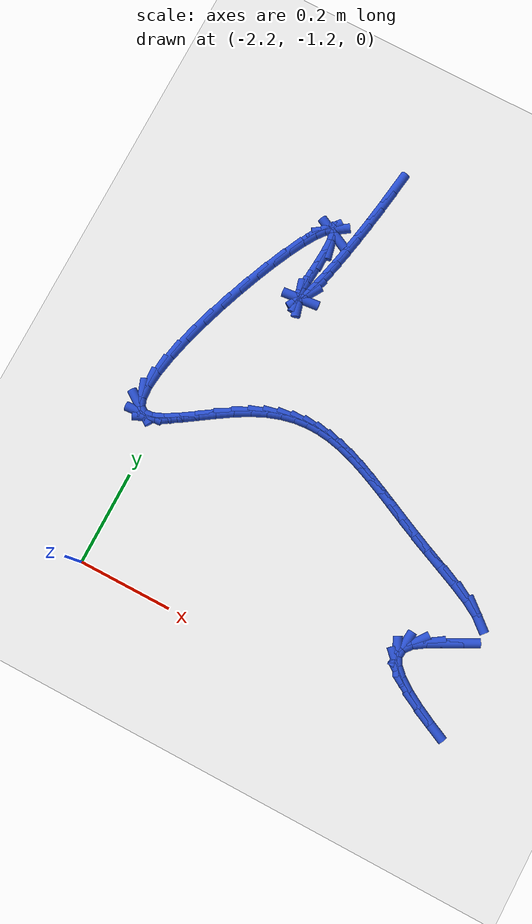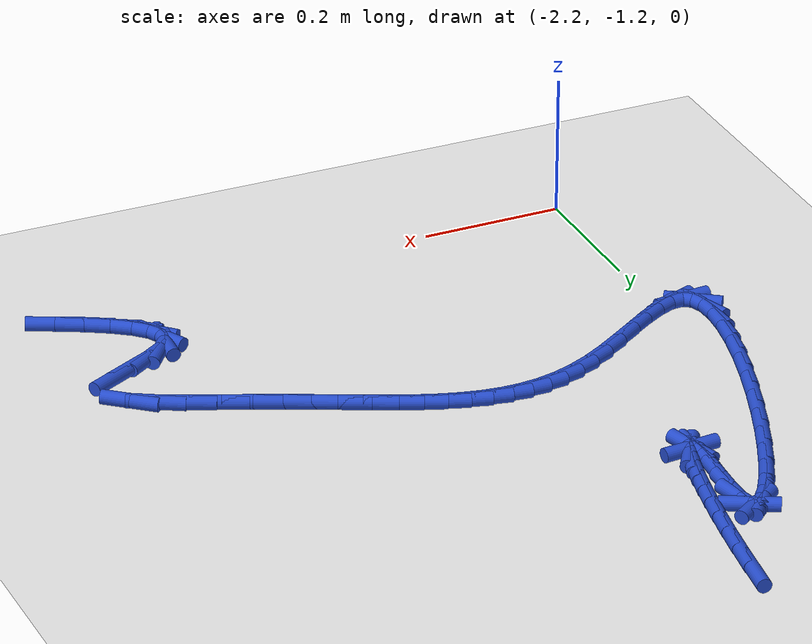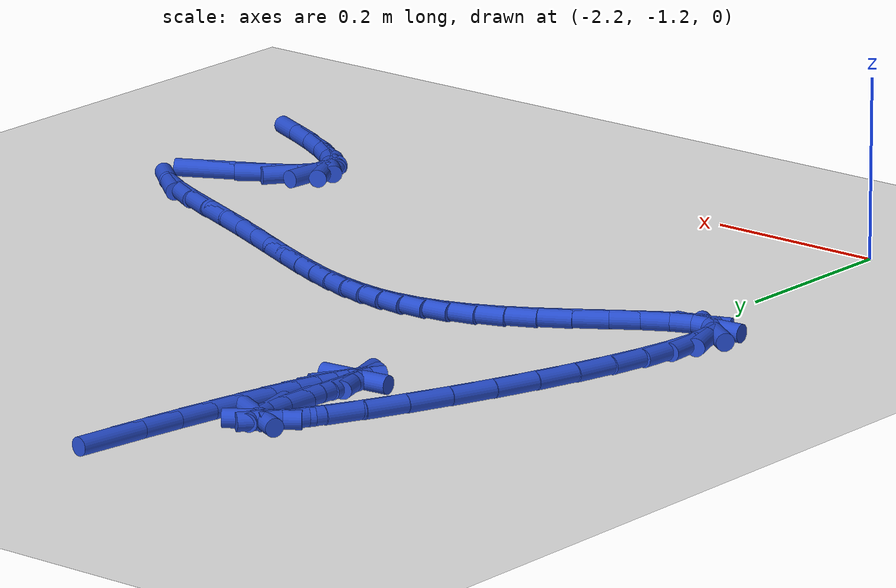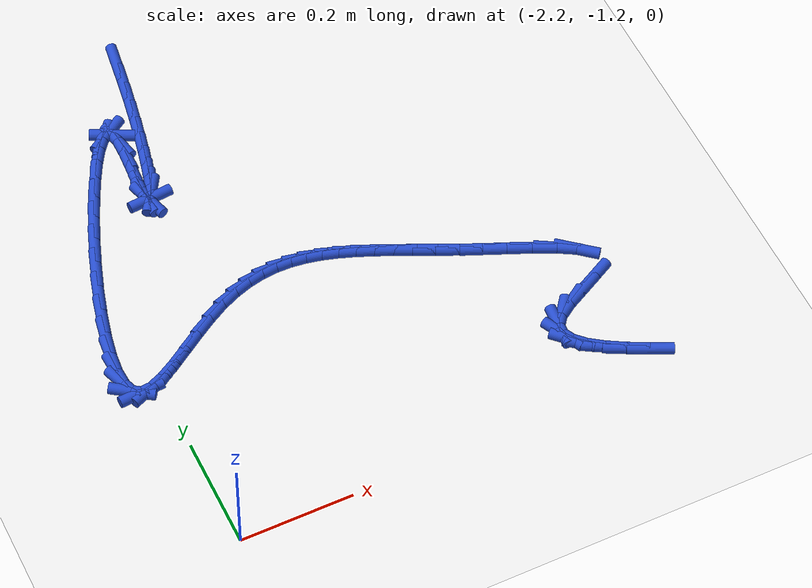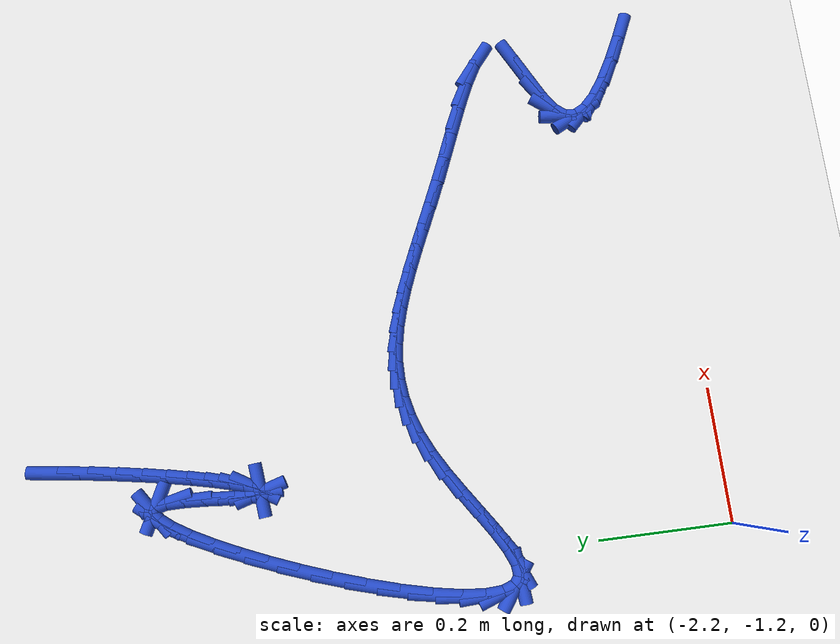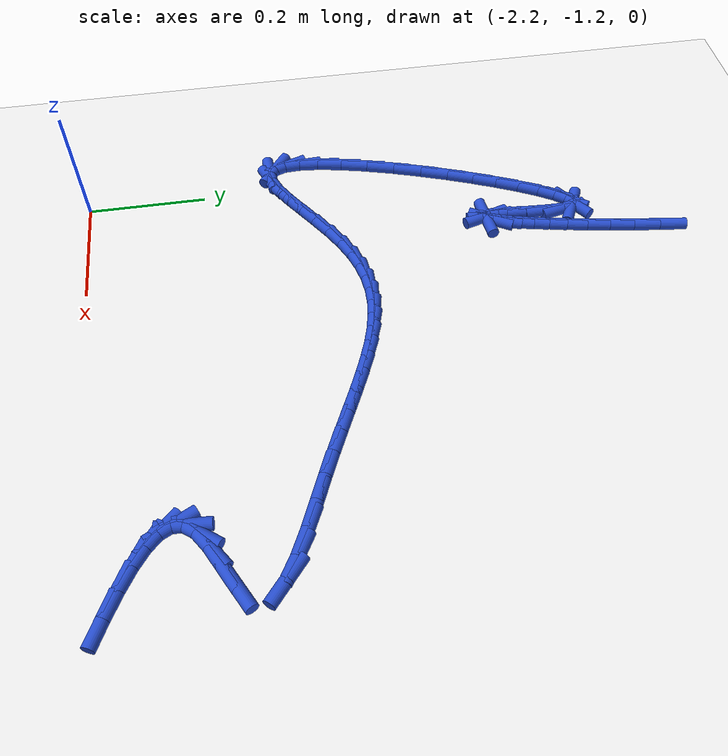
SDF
<sdf version="1.6">
 <world name="default">
  <model name="ground_plane">
   <static>1</static>
   <link name="link">
    <collision name="collision">
     <geometry><plane><normal>0 0 1</normal><size>100 100</size></plane></geometry>
     <surface><friction><ode><mu>100</mu><mu2>50</mu2></ode></friction></surface>
    </collision>
    <visual name="visual">
     <cast_shadows>0</cast_shadows>
     <geometry><plane><normal>0 0 1</normal><size>100 100</size></plane></geometry>
     <material>
      <script><uri>file://media/materials/scripts/gazebo.material</uri><name>Gazebo/WhiteGlow</name></script>
     </material>
    </visual>
   </link>
  </model>
  <model name="line">
   <link name="link_137">
    <pose>-1.9992440972332093 -0.21572756299936324 0.01 0 1.57 1.4338012270204814</pose>
    <collision name="collision">
     <geometry><cylinder><radius>0.01</radius><length>0.08</length></cylinder></geometry>
    </collision>
    <visual name="visual">
     <material>
      <script><name>Gazebo/Blue</name><uri>file://media/materials/scripts/gazebo.material</uri></script>
     </material>
     <geometry><cylinder><radius>0.01</radius><length>0.08</length></cylinder></geometry>
    </visual>
   </link>
   <link name="link_138">
    <pose>-2.005609151151514 -0.26189844771329696 0.01 0 1.57 1.4169930745652433</pose>
    <collision name="collision">
     <geometry><cylinder><radius>0.01</radius><length>0.08</length></cylinder></geometry>
    </collision>
    <visual name="visual">
     <material>
      <script><name>Gazebo/Blue</name><uri>file://media/materials/scripts/gazebo.material</uri></script>
     </material>
     <geometry><cylinder><radius>0.01</radius><length>0.08</length></cylinder></geometry>
    </visual>
   </link>
   <link name="link_139">
    <pose>-2.0124255177718005 -0.30586717735423147 0.01 0 1.57 1.4002832744275244</pose>
    <collision name="collision">
     <geometry><cylinder><radius>0.01</radius><length>0.08</length></cylinder></geometry>
    </collision>
    <visual name="visual">
     <material>
      <script><name>Gazebo/Blue</name><uri>file://media/materials/scripts/gazebo.material</uri></script>
     </material>
     <geometry><cylinder><radius>0.01</radius><length>0.08</length></cylinder></geometry>
    </visual>
   </link>
   <link name="link_140">
    <pose>-2.01952591506862 -0.3471041939317443 0.01 0 1.57 1.382989794969553</pose>
    <collision name="collision">
     <geometry><cylinder><radius>0.01</radius><length>0.08</length></cylinder></geometry>
    </collision>
    <visual name="visual">
     <material>
      <script><name>Gazebo/Blue</name><uri>file://media/materials/scripts/gazebo.material</uri></script>
     </material>
     <geometry><cylinder><radius>0.01</radius><length>0.08</length></cylinder></geometry>
    </visual>
   </link>
   <link name="link_141">
    <pose>-2.026743061016525 -0.38507993945541513 0.01 0 1.57 1.3641465231366445</pose>
    <collision name="collision">
     <geometry><cylinder><radius>0.01</radius><length>0.08</length></cylinder></geometry>
    </collision>
    <visual name="visual">
     <material>
      <script><name>Gazebo/Blue</name><uri>file://media/materials/scripts/gazebo.material</uri></script>
     </material>
     <geometry><cylinder><radius>0.01</radius><length>0.08</length></cylinder></geometry>
    </visual>
   </link>
   <link name="link_142">
    <pose>-2.0339096735900664 -0.4192648559348213 0.01 0 1.57 1.3421866726298477</pose>
    <collision name="collision">
     <geometry><cylinder><radius>0.01</radius><length>0.08</length></cylinder></geometry>
    </collision>
    <visual name="visual">
     <material>
      <script><name>Gazebo/Blue</name><uri>file://media/materials/scripts/gazebo.material</uri></script>
     </material>
     <geometry><cylinder><radius>0.01</radius><length>0.08</length></cylinder></geometry>
    </visual>
   </link>
   <link name="link_143">
    <pose>-2.040858470763799 -0.4491293853795414 0.01 0 1.57 1.3141863098238706</pose>
    <collision name="collision">
     <geometry><cylinder><radius>0.01</radius><length>0.08</length></cylinder></geometry>
    </collision>
    <visual name="visual">
     <material>
      <script><name>Gazebo/Blue</name><uri>file://media/materials/scripts/gazebo.material</uri></script>
     </material>
     <geometry><cylinder><radius>0.01</radius><length>0.08</length></cylinder></geometry>
    </visual>
   </link>
   <link name="link_144">
    <pose>-2.0474221705122724 -0.4741439697991534 0.01 0 1.57 1.2737050557894216</pose>
    <collision name="collision">
     <geometry><cylinder><radius>0.01</radius><length>0.08</length></cylinder></geometry>
    </collision>
    <visual name="visual">
     <material>
      <script><name>Gazebo/Blue</name><uri>file://media/materials/scripts/gazebo.material</uri></script>
     </material>
     <geometry><cylinder><radius>0.01</radius><length>0.08</length></cylinder></geometry>
    </visual>
   </link>
   <link name="link_145">
    <pose>-2.0534334908100393 -0.4937790512032355 0.01 0 1.57 1.2028344726338351</pose>
    <collision name="collision">
     <geometry><cylinder><radius>0.01</radius><length>0.08</length></cylinder></geometry>
    </collision>
    <visual name="visual">
     <material>
      <script><name>Gazebo/Blue</name><uri>file://media/materials/scripts/gazebo.material</uri></script>
     </material>
     <geometry><cylinder><radius>0.01</radius><length>0.08</length></cylinder></geometry>
    </visual>
   </link>
   <link name="link_146">
    <pose>-2.0587251496316523 -0.5075050716013662 0.01 0 1.57 1.0271267141517604</pose>
    <collision name="collision">
     <geometry><cylinder><radius>0.01</radius><length>0.08</length></cylinder></geometry>
    </collision>
    <visual name="visual">
     <material>
      <script><name>Gazebo/Blue</name><uri>file://media/materials/scripts/gazebo.material</uri></script>
     </material>
     <geometry><cylinder><radius>0.01</radius><length>0.08</length></cylinder></geometry>
    </visual>
   </link>
   <link name="link_147">
    <pose>-2.0631298649516627 -0.5147924730031234 0.01 0 1.57 0.09499020179345621</pose>
    <collision name="collision">
     <geometry><cylinder><radius>0.01</radius><length>0.08</length></cylinder></geometry>
    </collision>
    <visual name="visual">
     <material>
      <script><name>Gazebo/Blue</name><uri>file://media/materials/scripts/gazebo.material</uri></script>
     </material>
     <geometry><cylinder><radius>0.01</radius><length>0.08</length></cylinder></geometry>
    </visual>
   </link>
   <link name="link_148">
    <pose>-2.066480354744623 -0.5151116974180855 0.01 0 1.57 -1.2824827077309113</pose>
    <collision name="collision">
     <geometry><cylinder><radius>0.01</radius><length>0.08</length></cylinder></geometry>
    </collision>
    <visual name="visual">
     <material>
      <script><name>Gazebo/Blue</name><uri>file://media/materials/scripts/gazebo.material</uri></script>
     </material>
     <geometry><cylinder><radius>0.01</radius><length>0.08</length></cylinder></geometry>
    </visual>
   </link>
   <link name="link_149">
    <pose>-2.0686093369850846 -0.5079331868558308 0.01 0 1.57 -1.5221564214407448</pose>
    <collision name="collision">
     <geometry><cylinder><radius>0.01</radius><length>0.08</length></cylinder></geometry>
    </collision>
    <visual name="visual">
     <material>
      <script><name>Gazebo/Blue</name><uri>file://media/materials/scripts/gazebo.material</uri></script>
     </material>
     <geometry><cylinder><radius>0.01</radius><length>0.08</length></cylinder></geometry>
    </visual>
   </link>
   <link name="link_150">
    <pose>-2.0693495296476 -0.4927273833259374 0.01 0 1.57 1.5364755640620082</pose>
    <collision name="collision">
     <geometry><cylinder><radius>0.01</radius><length>0.08</length></cylinder></geometry>
    </collision>
    <visual name="visual">
     <material>
      <script><name>Gazebo/Blue</name><uri>file://media/materials/scripts/gazebo.material</uri></script>
     </material>
     <geometry><cylinder><radius>0.01</radius><length>0.08</length></cylinder></geometry>
    </visual>
   </link>
   <link name="link_151">
    <pose>-2.068533657754028 -0.4689647550811415 0.01 0 1.57 1.501935892399699</pose>
    <collision name="collision">
     <geometry><cylinder><radius>0.01</radius><length>0.08</length></cylinder></geometry>
    </collision>
    <visual name="visual">
     <material>
      <script><name>Gazebo/Blue</name><uri>file://media/materials/scripts/gazebo.material</uri></script>
     </material>
     <geometry><cylinder><radius>0.01</radius><length>0.08</length></cylinder></geometry>
    </visual>
   </link>
   <link name="link_152">
    <pose>-2.0663626459180757 -0.43748689268007646 0.01 0 1.57 1.5117403737281012</pose>
    <collision name="collision">
     <geometry><cylinder><radius>0.01</radius><length>0.08</length></cylinder></geometry>
    </collision>
    <visual name="visual">
     <material>
      <script><name>Gazebo/Blue</name><uri>file://media/materials/scripts/gazebo.material</uri></script>
     </material>
     <geometry><cylinder><radius>0.01</radius><length>0.08</length></cylinder></geometry>
    </visual>
   </link>
   <link name="link_153">
    <pose>-2.0643937506499697 -0.40418617152385783 0.01 0 1.57 -1.5671369666159751</pose>
    <collision name="collision">
     <geometry><cylinder><radius>0.01</radius><length>0.08</length></cylinder></geometry>
    </collision>
    <visual name="visual">
     <material>
      <script><name>Gazebo/Blue</name><uri>file://media/materials/scripts/gazebo.material</uri></script>
     </material>
     <geometry><cylinder><radius>0.01</radius><length>0.08</length></cylinder></geometry>
    </visual>
   </link>
   <link name="link_154">
    <pose>-2.064496463804767 -0.37611768651539124 0.01 0 1.57 -1.341602344457005</pose>
    <collision name="collision">
     <geometry><cylinder><radius>0.01</radius><length>0.08</length></cylinder></geometry>
    </collision>
    <visual name="visual">
     <material>
      <script><name>Gazebo/Blue</name><uri>file://media/materials/scripts/gazebo.material</uri></script>
     </material>
     <geometry><cylinder><radius>0.01</radius><length>0.08</length></cylinder></geometry>
    </visual>
   </link>
   <link name="link_155">
    <pose>-2.068338871620844 -0.35964739978272264 0.01 0 1.57 -0.45865970675624823</pose>
    <collision name="collision">
     <geometry><cylinder><radius>0.01</radius><length>0.08</length></cylinder></geometry>
    </collision>
    <visual name="visual">
     <material>
      <script><name>Gazebo/Blue</name><uri>file://media/materials/scripts/gazebo.material</uri></script>
     </material>
     <geometry><cylinder><radius>0.01</radius><length>0.08</length></cylinder></geometry>
    </visual>
   </link>
   <link name="link_156">
    <pose>-2.0760409575113905 -0.3558442593326032 0.01 0 1.57 0.5984972599780807</pose>
    <collision name="collision">
     <geometry><cylinder><radius>0.01</radius><length>0.08</length></cylinder></geometry>
    </collision>
    <visual name="visual">
     <material>
      <script><name>Gazebo/Blue</name><uri>file://media/materials/scripts/gazebo.material</uri></script>
     </material>
     <geometry><cylinder><radius>0.01</radius><length>0.08</length></cylinder></geometry>
    </visual>
   </link>
   <link name="link_157">
    <pose>-2.0870048172249183 -0.3633208769159195 0.01 0 1.57 0.9052793260898575</pose>
    <collision name="collision">
     <geometry><cylinder><radius>0.01</radius><length>0.08</length></cylinder></geometry>
    </collision>
    <visual name="visual">
     <material>
      <script><name>Gazebo/Blue</name><uri>file://media/materials/scripts/gazebo.material</uri></script>
     </material>
     <geometry><cylinder><radius>0.01</radius><length>0.08</length></cylinder></geometry>
    </visual>
   </link>
   <link name="link_158">
    <pose>-2.1006286123510125 -0.38067640310058554 0.01 0 1.57 1.0252200366496422</pose>
    <collision name="collision">
     <geometry><cylinder><radius>0.01</radius><length>0.08</length></cylinder></geometry>
    </collision>
    <visual name="visual">
     <material>
      <script><name>Gazebo/Blue</name><uri>file://media/materials/scripts/gazebo.material</uri></script>
     </material>
     <geometry><cylinder><radius>0.01</radius><length>0.08</length></cylinder></geometry>
    </visual>
   </link>
   <link name="link_159">
    <pose>-2.1163105044792587 -0.4065099884545148 0.01 0 1.57 1.0906903364584297</pose>
    <collision name="collision">
     <geometry><cylinder><radius>0.01</radius><length>0.08</length></cylinder></geometry>
    </collision>
    <visual name="visual">
     <material>
      <script><name>Gazebo/Blue</name><uri>file://media/materials/scripts/gazebo.material</uri></script>
     </material>
     <geometry><cylinder><radius>0.01</radius><length>0.08</length></cylinder></geometry>
    </visual>
   </link>
   <link name="link_160">
    <pose>-2.1334486551992398 -0.43942078354562086 0.01 0 1.57 1.134483494859378</pose>
    <collision name="collision">
     <geometry><cylinder><radius>0.01</radius><length>0.08</length></cylinder></geometry>
    </collision>
    <visual name="visual">
     <material>
      <script><name>Gazebo/Blue</name><uri>file://media/materials/scripts/gazebo.material</uri></script>
     </material>
     <geometry><cylinder><radius>0.01</radius><length>0.08</length></cylinder></geometry>
    </visual>
   </link>
   <link name="link_161">
    <pose>-2.1514412261005424 -0.4780079389418175 0.01 0 1.57 1.1683622404736749</pose>
    <collision name="collision">
     <geometry><cylinder><radius>0.01</radius><length>0.08</length></cylinder></geometry>
    </collision>
    <visual name="visual">
     <material>
      <script><name>Gazebo/Blue</name><uri>file://media/materials/scripts/gazebo.material</uri></script>
     </material>
     <geometry><cylinder><radius>0.01</radius><length>0.08</length></cylinder></geometry>
    </visual>
   </link>
   <link name="link_162">
    <pose>-2.1696863787727505 -0.5208706052110182 0.01 0 1.57 1.1978336174422202</pose>
    <collision name="collision">
     <geometry><cylinder><radius>0.01</radius><length>0.08</length></cylinder></geometry>
    </collision>
    <visual name="visual">
     <material>
      <script><name>Gazebo/Blue</name><uri>file://media/materials/scripts/gazebo.material</uri></script>
     </material>
     <geometry><cylinder><radius>0.01</radius><length>0.08</length></cylinder></geometry>
    </visual>
   </link>
   <link name="link_163">
    <pose>-2.1875822748054494 -0.566607932921137 0.01 0 1.57 1.226201318005014</pose>
    <collision name="collision">
     <geometry><cylinder><radius>0.01</radius><length>0.08</length></cylinder></geometry>
    </collision>
    <visual name="visual">
     <material>
      <script><name>Gazebo/Blue</name><uri>file://media/materials/scripts/gazebo.material</uri></script>
     </material>
     <geometry><cylinder><radius>0.01</radius><length>0.08</length></cylinder></geometry>
    </visual>
   </link>
   <link name="link_164">
    <pose>-2.204527075788224 -0.613819072640087 0.01 0 1.57 1.2560951996371772</pose>
    <collision name="collision">
     <geometry><cylinder><radius>0.01</radius><length>0.08</length></cylinder></geometry>
    </collision>
    <visual name="visual">
     <material>
      <script><name>Gazebo/Blue</name><uri>file://media/materials/scripts/gazebo.material</uri></script>
     </material>
     <geometry><cylinder><radius>0.01</radius><length>0.08</length></cylinder></geometry>
    </visual>
   </link>
   <link name="link_165">
    <pose>-2.2199189433106588 -0.6611031749357823 0.01 0 1.57 1.2903504677400204</pose>
    <collision name="collision">
     <geometry><cylinder><radius>0.01</radius><length>0.08</length></cylinder></geometry>
    </collision>
    <visual name="visual">
     <material>
      <script><name>Gazebo/Blue</name><uri>file://media/materials/scripts/gazebo.material</uri></script>
     </material>
     <geometry><cylinder><radius>0.01</radius><length>0.08</length></cylinder></geometry>
    </visual>
   </link>
   <link name="link_166">
    <pose>-2.233156038962339 -0.7070593903761362 0.01 0 1.57 1.3329364419853198</pose>
    <collision name="collision">
     <geometry><cylinder><radius>0.01</radius><length>0.08</length></cylinder></geometry>
    </collision>
    <visual name="visual">
     <material>
      <script><name>Gazebo/Blue</name><uri>file://media/materials/scripts/gazebo.material</uri></script>
     </material>
     <geometry><cylinder><radius>0.01</radius><length>0.08</length></cylinder></geometry>
    </visual>
   </link>
   <link name="link_167">
    <pose>-2.2436365243328495 -0.7502868695290628 0.01 0 1.57 1.3906128479362465</pose>
    <collision name="collision">
     <geometry><cylinder><radius>0.01</radius><length>0.08</length></cylinder></geometry>
    </collision>
    <visual name="visual">
     <material>
      <script><name>Gazebo/Blue</name><uri>file://media/materials/scripts/gazebo.material</uri></script>
     </material>
     <geometry><cylinder><radius>0.01</radius><length>0.08</length></cylinder></geometry>
    </visual>
   </link>
   <link name="link_168">
    <pose>-2.250758561011775 -0.7893847629624754 0.01 0 1.57 1.4768824910097964</pose>
    <collision name="collision">
     <geometry><cylinder><radius>0.01</radius><length>0.08</length></cylinder></geometry>
    </collision>
    <visual name="visual">
     <material>
      <script><name>Gazebo/Blue</name><uri>file://media/materials/scripts/gazebo.material</uri></script>
     </material>
     <geometry><cylinder><radius>0.01</radius><length>0.08</length></cylinder></geometry>
    </visual>
   </link>
   <link name="link_169">
    <pose>-2.2539203105886996 -0.8229522212442867 0.01 0 1.57 -1.5182704703638248</pose>
    <collision name="collision">
     <geometry><cylinder><radius>0.01</radius><length>0.08</length></cylinder></geometry>
    </collision>
    <visual name="visual">
     <material>
      <script><name>Gazebo/Blue</name><uri>file://media/materials/scripts/gazebo.material</uri></script>
     </material>
     <geometry><cylinder><radius>0.01</radius><length>0.08</length></cylinder></geometry>
    </visual>
   </link>
   <link name="link_170">
    <pose>-2.2525199346532103 -0.8495883949424129 0.01 0 1.57 -1.2264559283615426</pose>
    <collision name="collision">
     <geometry><cylinder><radius>0.01</radius><length>0.08</length></cylinder></geometry>
    </collision>
    <visual name="visual">
     <material>
      <script><name>Gazebo/Blue</name><uri>file://media/materials/scripts/gazebo.material</uri></script>
     </material>
     <geometry><cylinder><radius>0.01</radius><length>0.08</length></cylinder></geometry>
    </visual>
   </link>
   <link name="link_171">
    <pose>-2.24595559479489 -0.8678924346247658 0.01 0 1.57 -0.608040182661327</pose>
    <collision name="collision">
     <geometry><cylinder><radius>0.01</radius><length>0.08</length></cylinder></geometry>
    </collision>
    <visual name="visual">
     <material>
      <script><name>Gazebo/Blue</name><uri>file://media/materials/scripts/gazebo.material</uri></script>
     </material>
     <geometry><cylinder><radius>0.01</radius><length>0.08</length></cylinder></geometry>
    </visual>
   </link>
   <link name="link_172">
    <pose>-2.2336293108026366 -0.8764715983597997 0.01 0 1.57 0.07922966247859241</pose>
    <collision name="collision">
     <geometry><cylinder><radius>0.01</radius><length>0.08</length></cylinder></geometry>
    </collision>
    <visual name="visual">
     <material>
      <script><name>Gazebo/Blue</name><uri>file://media/materials/scripts/gazebo.material</uri></script>
     </material>
     <geometry><cylinder><radius>0.01</radius><length>0.08</length></cylinder></geometry>
    </visual>
   </link>
   <link name="link_173">
    <pose>-2.2154647941044923 -0.8750294108689609 0.01 0 1.57 0.39360796860474373</pose>
    <collision name="collision">
     <geometry><cylinder><radius>0.01</radius><length>0.08</length></cylinder></geometry>
    </collision>
    <visual name="visual">
     <material>
      <script><name>Gazebo/Blue</name><uri>file://media/materials/scripts/gazebo.material</uri></script>
     </material>
     <geometry><cylinder><radius>0.01</radius><length>0.08</length></cylinder></geometry>
    </visual>
   </link>
   <link name="link_174">
    <pose>-2.192429887799629 -0.8654635028292087 0.01 0 1.57 0.5249981706506021</pose>
    <collision name="collision">
     <geometry><cylinder><radius>0.01</radius><length>0.08</length></cylinder></geometry>
    </collision>
    <visual name="visual">
     <material>
      <script><name>Gazebo/Blue</name><uri>file://media/materials/scripts/gazebo.material</uri></script>
     </material>
     <geometry><cylinder><radius>0.01</radius><length>0.08</length></cylinder></geometry>
    </visual>
   </link>
   <link name="link_175">
    <pose>-2.165616831344157 -0.8499329075692447 0.01 0 1.57 0.5802242630198674</pose>
    <collision name="collision">
     <geometry><cylinder><radius>0.01</radius><length>0.08</length></cylinder></geometry>
    </collision>
    <visual name="visual">
     <material>
      <script><name>Gazebo/Blue</name><uri>file://media/materials/scripts/gazebo.material</uri></script>
     </material>
     <geometry><cylinder><radius>0.01</radius><length>0.08</length></cylinder></geometry>
    </visual>
   </link>
   <link name="link_176">
    <pose>-2.1361178641941874 -0.8305966584177695 0.01 0 1.57 0.5936466706423856</pose>
    <collision name="collision">
     <geometry><cylinder><radius>0.01</radius><length>0.08</length></cylinder></geometry>
    </collision>
    <visual name="visual">
     <material>
      <script><name>Gazebo/Blue</name><uri>file://media/materials/scripts/gazebo.material</uri></script>
     </material>
     <geometry><cylinder><radius>0.01</radius><length>0.08</length></cylinder></geometry>
    </visual>
   </link>
   <link name="link_177">
    <pose>-2.105025225805827 -0.8096137887034841 0.01 0 1.57 0.5749122181421633</pose>
    <collision name="collision">
     <geometry><cylinder><radius>0.01</radius><length>0.08</length></cylinder></geometry>
    </collision>
    <visual name="visual">
     <material>
      <script><name>Gazebo/Blue</name><uri>file://media/materials/scripts/gazebo.material</uri></script>
     </material>
     <geometry><cylinder><radius>0.01</radius><length>0.08</length></cylinder></geometry>
    </visual>
   </link>
   <link name="link_178">
    <pose>-2.0734311556351863 -0.7891433317550893 0.01 0 1.57 0.52127077275272</pose>
    <collision name="collision">
     <geometry><cylinder><radius>0.01</radius><length>0.08</length></cylinder></geometry>
    </collision>
    <visual name="visual">
     <material>
      <script><name>Gazebo/Blue</name><uri>file://media/materials/scripts/gazebo.material</uri></script>
     </material>
     <geometry><cylinder><radius>0.01</radius><length>0.08</length></cylinder></geometry>
    </visual>
   </link>
   <link name="link_179">
    <pose>-2.0424241421263263 -0.7713375410320956 0.01 0 1.57 0.4331937842521478</pose>
    <collision name="collision">
     <geometry><cylinder><radius>0.01</radius><length>0.08</length></cylinder></geometry>
    </collision>
    <visual name="visual">
     <material>
      <script><name>Gazebo/Blue</name><uri>file://media/materials/scripts/gazebo.material</uri></script>
     </material>
     <geometry><cylinder><radius>0.01</radius><length>0.08</length></cylinder></geometry>
    </visual>
   </link>
   <link name="link_180">
    <pose>-2.0126638914262345 -0.7575736557184756 0.01 0 1.57 0.3301496381347327</pose>
    <collision name="collision">
     <geometry><cylinder><radius>0.01</radius><length>0.08</length></cylinder></geometry>
    </collision>
    <visual name="visual">
     <material>
      <script><name>Gazebo/Blue</name><uri>file://media/materials/scripts/gazebo.material</uri></script>
     </material>
     <geometry><cylinder><radius>0.01</radius><length>0.08</length></cylinder></geometry>
    </visual>
   </link>
   <link name="link_181">
    <pose>-1.983990515537295 -0.7477475171733655 0.01 0 1.57 0.21774766144137792</pose>
    <collision name="collision">
     <geometry><cylinder><radius>0.01</radius><length>0.08</length></cylinder></geometry>
    </collision>
    <visual name="visual">
     <material>
      <script><name>Gazebo/Blue</name><uri>file://media/materials/scripts/gazebo.material</uri></script>
     </material>
     <geometry><cylinder><radius>0.01</radius><length>0.08</length></cylinder></geometry>
    </visual>
   </link>
   <link name="link_182">
    <pose>-1.9561517719985295 -0.741588038158326 0.01 0 1.57 0.10105868224463845</pose>
    <collision name="collision">
     <geometry><cylinder><radius>0.01</radius><length>0.08</length></cylinder></geometry>
    </collision>
    <visual name="visual">
     <material>
      <script><name>Gazebo/Blue</name><uri>file://media/materials/scripts/gazebo.material</uri></script>
     </material>
     <geometry><cylinder><radius>0.01</radius><length>0.08</length></cylinder></geometry>
    </visual>
   </link>
   <link name="link_183">
    <pose>-1.9288954183489604 -0.7388241314349177 0.01 0 1.57 -0.013390552503689741</pose>
    <collision name="collision">
     <geometry><cylinder><radius>0.01</radius><length>0.08</length></cylinder></geometry>
    </collision>
    <visual name="visual">
     <material>
      <script><name>Gazebo/Blue</name><uri>file://media/materials/scripts/gazebo.material</uri></script>
     </material>
     <geometry><cylinder><radius>0.01</radius><length>0.08</length></cylinder></geometry>
    </visual>
   </link>
   <link name="link_184">
    <pose>-1.9019692121276097 -0.7391847097647012 0.01 0 1.57 -0.11914178450601746</pose>
    <collision name="collision">
     <geometry><cylinder><radius>0.01</radius><length>0.08</length></cylinder></geometry>
    </collision>
    <visual name="visual">
     <material>
      <script><name>Gazebo/Blue</name><uri>file://media/materials/scripts/gazebo.material</uri></script>
     </material>
     <geometry><cylinder><radius>0.01</radius><length>0.08</length></cylinder></geometry>
    </visual>
   </link>
   <link name="link_185">
    <pose>-1.8751209108734987 -0.7423986859092377 0.01 0 1.57 -0.21129575089448097</pose>
    <collision name="collision">
     <geometry><cylinder><radius>0.01</radius><length>0.08</length></cylinder></geometry>
    </collision>
    <visual name="visual">
     <material>
      <script><name>Gazebo/Blue</name><uri>file://media/materials/scripts/gazebo.material</uri></script>
     </material>
     <geometry><cylinder><radius>0.01</radius><length>0.08</length></cylinder></geometry>
    </visual>
   </link>
   <link name="link_186">
    <pose>-1.8480982721256494 -0.7481949726300879 0.01 0 1.57 -0.287198142697634</pose>
    <collision name="collision">
     <geometry><cylinder><radius>0.01</radius><length>0.08</length></cylinder></geometry>
    </collision>
    <visual name="visual">
     <material>
      <script><name>Gazebo/Blue</name><uri>file://media/materials/scripts/gazebo.material</uri></script>
     </material>
     <geometry><cylinder><radius>0.01</radius><length>0.08</length></cylinder></geometry>
    </visual>
   </link>
   <link name="link_187">
    <pose>-1.820649053423084 -0.7563024826888124 0.01 0 1.57 -0.34623369709496116</pose>
    <collision name="collision">
     <geometry><cylinder><radius>0.01</radius><length>0.08</length></cylinder></geometry>
    </collision>
    <visual name="visual">
     <material>
      <script><name>Gazebo/Blue</name><uri>file://media/materials/scripts/gazebo.material</uri></script>
     </material>
     <geometry><cylinder><radius>0.01</radius><length>0.08</length></cylinder></geometry>
    </visual>
   </link>
   <link name="link_188">
    <pose>-1.792521012304824 -0.766450128846972 0.01 0 1.57 -0.38916974732529874</pose>
    <collision name="collision">
     <geometry><cylinder><radius>0.01</radius><length>0.08</length></cylinder></geometry>
    </collision>
    <visual name="visual">
     <material>
      <script><name>Gazebo/Blue</name><uri>file://media/materials/scripts/gazebo.material</uri></script>
     </material>
     <geometry><cylinder><radius>0.01</radius><length>0.08</length></cylinder></geometry>
    </visual>
   </link>
   <link name="link_189">
    <pose>-1.763461906309892 -0.7783668238661275 0.01 0 1.57 -0.4174946976743972</pose>
    <collision name="collision">
     <geometry><cylinder><radius>0.01</radius><length>0.08</length></cylinder></geometry>
    </collision>
    <visual name="visual">
     <material>
      <script><name>Gazebo/Blue</name><uri>file://media/materials/scripts/gazebo.material</uri></script>
     </material>
     <geometry><cylinder><radius>0.01</radius><length>0.08</length></cylinder></geometry>
    </visual>
   </link>
   <link name="link_190">
    <pose>-1.733219492977309 -0.7917814805078399 0.01 0 1.57 -0.4329523920045359</pose>
    <collision name="collision">
     <geometry><cylinder><radius>0.01</radius><length>0.08</length></cylinder></geometry>
    </collision>
    <visual name="visual">
     <material>
      <script><name>Gazebo/Blue</name><uri>file://media/materials/scripts/gazebo.material</uri></script>
     </material>
     <geometry><cylinder><radius>0.01</radius><length>0.08</length></cylinder></geometry>
    </visual>
   </link>
   <link name="link_191">
    <pose>-1.7015415298460979 -0.8064230115336695 0.01 0 1.57 -0.4372824099977348</pose>
    <collision name="collision">
     <geometry><cylinder><radius>0.01</radius><length>0.08</length></cylinder></geometry>
    </collision>
    <visual name="visual">
     <material>
      <script><name>Gazebo/Blue</name><uri>file://media/materials/scripts/gazebo.material</uri></script>
     </material>
     <geometry><cylinder><radius>0.01</radius><length>0.08</length></cylinder></geometry>
    </visual>
   </link>
   <link name="link_192">
    <pose>-1.6681757744552799 -0.8220203297051772 0.01 0 1.57 -0.43210507121667413</pose>
    <collision name="collision">
     <geometry><cylinder><radius>0.01</radius><length>0.08</length></cylinder></geometry>
    </collision>
    <visual name="visual">
     <material>
      <script><name>Gazebo/Blue</name><uri>file://media/materials/scripts/gazebo.material</uri></script>
     </material>
     <geometry><cylinder><radius>0.01</radius><length>0.08</length></cylinder></geometry>
    </visual>
   </link>
   <link name="link_193">
    <pose>-1.6328699843438772 -0.8383023477839244 0.01 0 1.57 -0.4188882689042263</pose>
    <collision name="collision">
     <geometry><cylinder><radius>0.01</radius><length>0.08</length></cylinder></geometry>
    </collision>
    <visual name="visual">
     <material>
      <script><name>Gazebo/Blue</name><uri>file://media/materials/scripts/gazebo.material</uri></script>
     </material>
     <geometry><cylinder><radius>0.01</radius><length>0.08</length></cylinder></geometry>
    </visual>
   </link>
   <link name="link_194">
    <pose>-1.5953719170509122 -0.8549979785314711 0.01 0 1.57 -0.4030618649592821</pose>
    <collision name="collision">
     <geometry><cylinder><radius>0.01</radius><length>0.08</length></cylinder></geometry>
    </collision>
    <visual name="visual">
     <material>
      <script><name>Gazebo/Blue</name><uri>file://media/materials/scripts/gazebo.material</uri></script>
     </material>
     <geometry><cylinder><radius>0.01</radius><length>0.08</length></cylinder></geometry>
    </visual>
   </link>
   <link name="link_195">
    <pose>-1.5558258414002362 -0.871860705737271 0.01 0 1.57 -0.40680192976869023</pose>
    <collision name="collision">
     <geometry><cylinder><radius>0.01</radius><length>0.08</length></cylinder></geometry>
    </collision>
    <visual name="visual">
     <material>
      <script><name>Gazebo/Blue</name><uri>file://media/materials/scripts/gazebo.material</uri></script>
     </material>
     <geometry><cylinder><radius>0.01</radius><length>0.08</length></cylinder></geometry>
    </visual>
   </link>
   <link name="link_196">
    <pose>-1.5165568061843384 -0.8887791518551412 0.01 0 1.57 -0.4399545972419407</pose>
    <collision name="collision">
     <geometry><cylinder><radius>0.01</radius><length>0.08</length></cylinder></geometry>
    </collision>
    <visual name="visual">
     <material>
      <script><name>Gazebo/Blue</name><uri>file://media/materials/scripts/gazebo.material</uri></script>
     </material>
     <geometry><cylinder><radius>0.01</radius><length>0.08</length></cylinder></geometry>
    </visual>
   </link>
   <link name="link_197">
    <pose>-1.4806356235056088 -0.9056881528308971 0.01 0 1.57 -0.5185383085688726</pose>
    <collision name="collision">
     <geometry><cylinder><radius>0.01</radius><length>0.08</length></cylinder></geometry>
    </collision>
    <visual name="visual">
     <material>
      <script><name>Gazebo/Blue</name><uri>file://media/materials/scripts/gazebo.material</uri></script>
     </material>
     <geometry><cylinder><radius>0.01</radius><length>0.08</length></cylinder></geometry>
    </visual>
   </link>
   <link name="link_198">
    <pose>-1.4511337553877823 -0.9225225848847081 0.01 0 1.57 -0.6952933430048375</pose>
    <collision name="collision">
     <geometry><cylinder><radius>0.01</radius><length>0.08</length></cylinder></geometry>
    </collision>
    <visual name="visual">
     <material>
      <script><name>Gazebo/Blue</name><uri>file://media/materials/scripts/gazebo.material</uri></script>
     </material>
     <geometry><cylinder><radius>0.01</radius><length>0.08</length></cylinder></geometry>
    </visual>
   </link>
   <link name="link_202">
    <pose>-1.454197877904781 -0.9879077669716931 0.01 0 1.57 0.48593464707467743</pose>
    <collision name="collision">
     <geometry><cylinder><radius>0.01</radius><length>0.08</length></cylinder></geometry>
    </collision>
    <visual name="visual">
     <material>
      <script><name>Gazebo/Blue</name><uri>file://media/materials/scripts/gazebo.material</uri></script>
     </material>
     <geometry><cylinder><radius>0.01</radius><length>0.08</length></cylinder></geometry>
    </visual>
   </link>
   <link name="link_203">
    <pose>-1.4842554535592303 -1.0037835009093914 0.01 0 1.57 0.480414765697479</pose>
    <collision name="collision">
     <geometry><cylinder><radius>0.01</radius><length>0.08</length></cylinder></geometry>
    </collision>
    <visual name="visual">
     <material>
      <script><name>Gazebo/Blue</name><uri>file://media/materials/scripts/gazebo.material</uri></script>
     </material>
     <geometry><cylinder><radius>0.01</radius><length>0.08</length></cylinder></geometry>
    </visual>
   </link>
   <link name="link_204">
    <pose>-1.5148080354474103 -1.019705616608923 0.01 0 1.57 0.5927156004962291</pose>
    <collision name="collision">
     <geometry><cylinder><radius>0.01</radius><length>0.08</length></cylinder></geometry>
    </collision>
    <visual name="visual">
     <material>
      <script><name>Gazebo/Blue</name><uri>file://media/materials/scripts/gazebo.material</uri></script>
     </material>
     <geometry><cylinder><radius>0.01</radius><length>0.08</length></cylinder></geometry>
    </visual>
   </link>
   <link name="link_205">
    <pose>-1.5387390716430593 -1.035823069855287 0.01 0 1.57 0.9240174960456834</pose>
    <collision name="collision">
     <geometry><cylinder><radius>0.01</radius><length>0.08</length></cylinder></geometry>
    </collision>
    <visual name="visual">
     <material>
      <script><name>Gazebo/Blue</name><uri>file://media/materials/scripts/gazebo.material</uri></script>
     </material>
     <geometry><cylinder><radius>0.01</radius><length>0.08</length></cylinder></geometry>
    </visual>
   </link>
   <link name="link_206">
    <pose>-1.5511383920563837 -1.0522430947774928 0.01 0 1.57 1.4935234721150823</pose>
    <collision name="collision">
     <geometry><cylinder><radius>0.01</radius><length>0.08</length></cylinder></geometry>
    </collision>
    <visual name="visual">
     <material>
      <script><name>Gazebo/Blue</name><uri>file://media/materials/scripts/gazebo.material</uri></script>
     </material>
     <geometry><cylinder><radius>0.01</radius><length>0.08</length></cylinder></geometry>
    </visual>
   </link>
   <link name="link_207">
    <pose>-1.5524336605940992 -1.068971989542304 0.01 0 1.57 -1.1036186234975789</pose>
    <collision name="collision">
     <geometry><cylinder><radius>0.01</radius><length>0.08</length></cylinder></geometry>
    </collision>
    <visual name="visual">
     <material>
      <script><name>Gazebo/Blue</name><uri>file://media/materials/scripts/gazebo.material</uri></script>
     </material>
     <geometry><cylinder><radius>0.01</radius><length>0.08</length></cylinder></geometry>
    </visual>
   </link>
   <link name="link_208">
    <pose>-1.5438438346143197 -1.0860010893247576 0.01 0 1.57 -0.7872686988090316</pose>
    <collision name="collision">
     <geometry><cylinder><radius>0.01</radius><length>0.08</length></cylinder></geometry>
    </collision>
    <visual name="visual">
     <material>
      <script><name>Gazebo/Blue</name><uri>file://media/materials/scripts/gazebo.material</uri></script>
     </material>
     <geometry><cylinder><radius>0.01</radius><length>0.08</length></cylinder></geometry>
    </visual>
   </link>
   <link name="link_209">
    <pose>-1.5265878714751568 -1.1033217292998907 0.01 0 1.57 -0.6191338745279866</pose>
    <collision name="collision">
     <geometry><cylinder><radius>0.01</radius><length>0.08</length></cylinder></geometry>
    </collision>
    <visual name="visual">
     <material>
      <script><name>Gazebo/Blue</name><uri>file://media/materials/scripts/gazebo.material</uri></script>
     </material>
     <geometry><cylinder><radius>0.01</radius><length>0.08</length></cylinder></geometry>
    </visual>
   </link>
   <link name="link_210">
    <pose>-1.5018847285347237 -1.1209252446427398 0.01 0 1.57 -0.5240713162130408</pose>
    <collision name="collision">
     <geometry><cylinder><radius>0.01</radius><length>0.08</length></cylinder></geometry>
    </collision>
    <visual name="visual">
     <material>
      <script><name>Gazebo/Blue</name><uri>file://media/materials/scripts/gazebo.material</uri></script>
     </material>
     <geometry><cylinder><radius>0.01</radius><length>0.08</length></cylinder></geometry>
    </visual>
   </link>
   <link name="link_211">
    <pose>-1.4709533631511322 -1.138802970528342 0.01 0 1.57 -0.46749001757567615</pose>
    <collision name="collision">
     <geometry><cylinder><radius>0.01</radius><length>0.08</length></cylinder></geometry>
    </collision>
    <visual name="visual">
     <material>
      <script><name>Gazebo/Blue</name><uri>file://media/materials/scripts/gazebo.material</uri></script>
     </material>
     <geometry><cylinder><radius>0.01</radius><length>0.08</length></cylinder></geometry>
    </visual>
   </link>
   <link name="link_212">
    <pose>-1.4350127326824957 -1.1569462421317345 0.01 0 1.57 -0.4337099749072148</pose>
    <collision name="collision">
     <geometry><cylinder><radius>0.01</radius><length>0.08</length></cylinder></geometry>
    </collision>
    <visual name="visual">
     <material>
      <script><name>Gazebo/Blue</name><uri>file://media/materials/scripts/gazebo.material</uri></script>
     </material>
     <geometry><cylinder><radius>0.01</radius><length>0.08</length></cylinder></geometry>
    </visual>
   </link>
  </model>
 </world>
</sdf>
